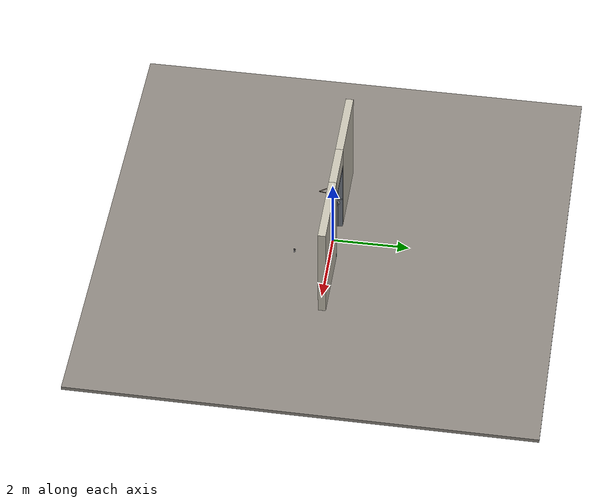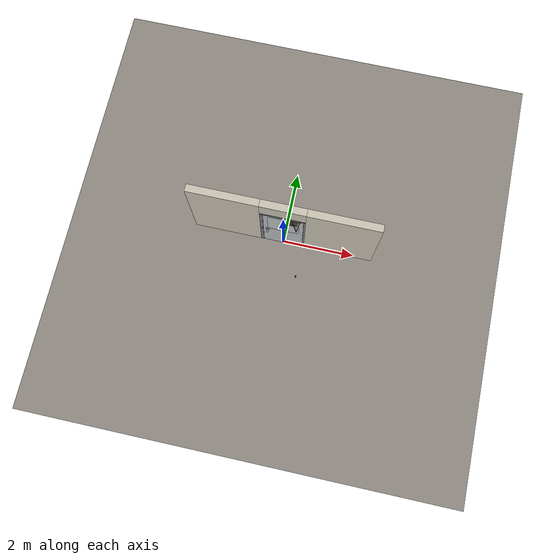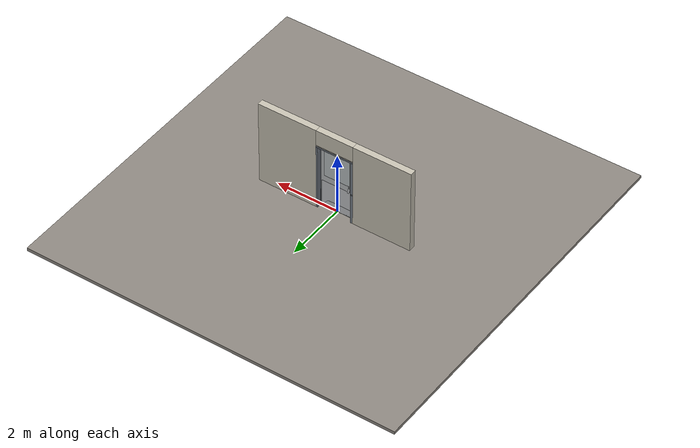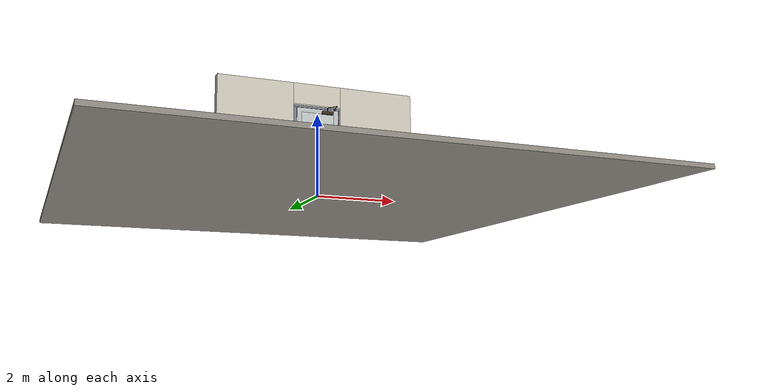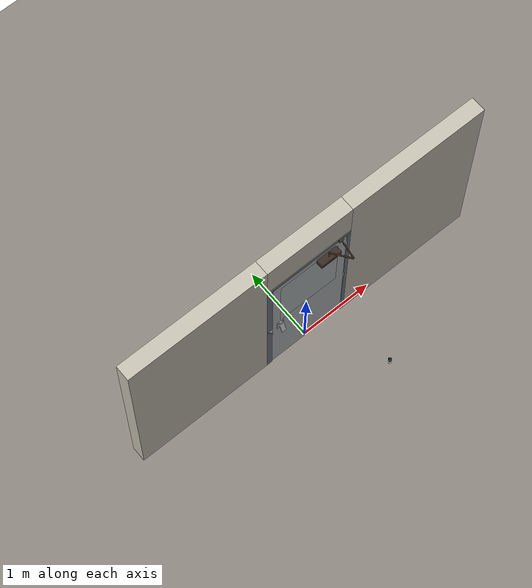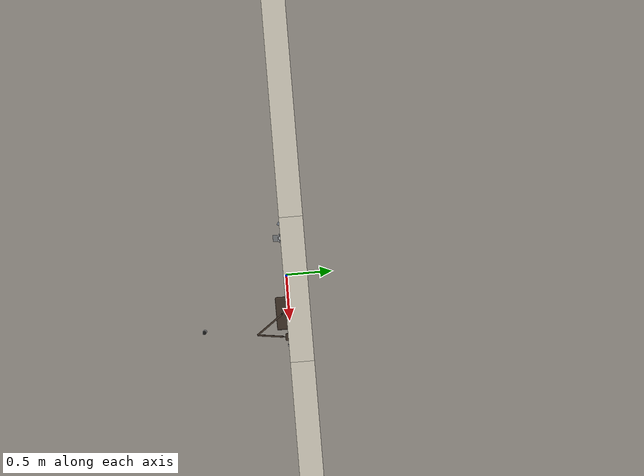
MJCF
<?xml version="1.0" ?>
<mujoco model="db0116_swing_single_full">
  <compiler angle="radian" meshdir="../../hardware" texturedir="../../textures" autolimits="true" inertiafromgeom="false"/>
  <option timestep="0.002" integrator="implicitfast" cone="elliptic" impratio="10" noslip_iterations="3">
    <flag multiccd="enable"/>
  </option>
  <size memory="16M"/>
  <default>
    <geom condim="4" solref="0.005 1" solimp="0.95 0.99 0.001"/>
    <joint solreflimit="0.005 1" solimplimit="0.95 0.99 0.001"/>
    <tendon solreflimit="0.005 1"/>
    <equality solref="0.002 1"/>
  </default>
  <visual>
    <headlight ambient="0.4 0.4 0.4" diffuse="0.7 0.7 0.7" specular="0.2 0.2 0.2"/>
    <quality shadowsize="4096"/>
    <map znear="0.01" zfar="60"/>
  </visual>
  <asset>
    <mesh name="closer_body_fdc4667657" file="closer_body_fdc4667657.obj"/>
    <mesh name="hinge_1cb808d647" file="hinge_1cb808d647.obj"/>
    <mesh name="hinge_jamb_7842e12854" file="hinge_jamb_7842e12854.obj"/>
    <material name="mat_floor" rgba="0.55 0.53 0.5 1" specular="0.2" shininess="0.15" reflectance="0"/>
    <material name="mat_wall" rgba="0.78 0.76 0.7 1" specular="0.2" shininess="0.1" reflectance="0"/>
    <material name="mat_leaf" rgba="0.72 0.73 0.74 1" specular="0.2" shininess="0.35" reflectance="0"/>
    <material name="mat_glass" rgba="0.8 0.85 0.85 0.35" specular="0.2" shininess="0.9" reflectance="0.1"/>
    <material name="mat_hinge" rgba="0.65 0.66 0.68 1" specular="0.74" shininess="0.5" reflectance="0.36"/>
    <material name="mat_op_stainless" rgba="0.75 0.76 0.77 1" specular="0.8" shininess="0.65" reflectance="0.4"/>
    <material name="mat_bolt" rgba="0.75 0.76 0.77 1" specular="0.8" shininess="0.65" reflectance="0.4"/>
    <material name="mat_frame" rgba="0.45 0.48 0.52 1" specular="0.32" shininess="0.6" reflectance="0.08"/>
    <material name="mat_seal" rgba="0.1 0.1 0.1 1" specular="0.2" shininess="0.1" reflectance="0"/>
    <material name="mat_closer" rgba="0.22 0.17 0.13 1" specular="0.8" shininess="0.6" reflectance="0.4"/>
    <material name="mat_kick" rgba="0.75 0.76 0.77 1" specular="0.8" shininess="0.65" reflectance="0.4"/>
    <material name="mat_bumper_stop" rgba="0.08 0.08 0.08 1" specular="0.2" shininess="0.1" reflectance="0"/>
    <material name="mat_stop_base" rgba="0.9 0.9 0.92 1" specular="0.8" shininess="0.9" reflectance="0.4"/>
    <texture name="skybox" type="skybox" builtin="gradient" rgb1="0.6 0.7 0.85" rgb2="0.9 0.92 0.95" width="256" height="256"/>
  </asset>
  <worldbody>
    <light name="sun" pos="1.5 -2.5 4" dir="-0.3 0.5 -0.8" directional="true" diffuse="0.8 0.8 0.8" specular="0.3 0.3 0.3" castshadow="true"/>
    <light name="fill" pos="-1.5 2.5 3" dir="0.3 -0.5 -0.7" directional="true" diffuse="0.35 0.35 0.4" castshadow="false"/>
    <camera name="robot_view" pos="0 -2.566812 1.812087" xyaxes="1 0 0 0 0.26963 0.962964" fovy="52"/>
    <camera name="far_view" pos="0 2.708813 1.812087" xyaxes="-1 0 0 0 -0.26963 0.962964" fovy="52"/>
    <camera name="iso" pos="-2.004737 -2.144762 2.234138" xyaxes="0.741536 -0.670913 0 0.242917 0.268487 0.932151" fovy="46"/>
    <camera name="detail_handle" pos="-0.241 -0.869521 1.293663" xyaxes="0.97561 0.219512 0 -0.070934 0.315262 0.94635" fovy="38"/>
    <geom name="floor" type="box" size="6 6 0.05" pos="0 0 -0.05" material="mat_floor" group="0" contype="1" conaffinity="1" friction="0.8 0.005 0.0001" density="2400"/>
    <geom name="wall_left" type="box" size="0.9415 0.1 1.3735" pos="-1.5585 0.071 1.3735" material="mat_wall" group="0" contype="1" conaffinity="1" friction="0.6 0.005 0.0001" density="800"/>
    <geom name="wall_right" type="box" size="0.9565 0.1 1.3735" pos="1.5435 0.071 1.3735" material="mat_wall" group="0" contype="1" conaffinity="1" friction="0.6 0.005 0.0001" density="800"/>
    <geom name="wall_header" type="box" size="0.602 0.1 0.26" pos="-0.015 0.071 2.487" material="mat_wall" group="0" contype="1" conaffinity="1" friction="0.6 0.005 0.0001" density="800"/>
    <geom name="hinge_0_jamb" type="mesh" mesh="hinge_jamb_7842e12854" pos="0.534 -0.029 0.259" quat="0 0 1 0" material="mat_hinge" group="1" contype="0" conaffinity="0" density="7850"/>
    <geom name="hinge_1_jamb" type="mesh" mesh="hinge_jamb_7842e12854" pos="0.534 -0.029 1.076" quat="0 0 1 0" material="mat_hinge" group="1" contype="0" conaffinity="0" density="7850"/>
    <geom name="hinge_2_jamb" type="mesh" mesh="hinge_jamb_7842e12854" pos="0.534 -0.029 1.963" quat="0 0 1 0" material="mat_hinge" group="1" contype="0" conaffinity="0" density="7850"/>
    <geom name="jamb_hinge" type="box" size="0.025 0.1 1.0735" pos="0.562 0.071 1.0735" material="mat_frame" group="0" contype="1" conaffinity="1" friction="0.6 0.005 0.0001" density="300"/>
    <geom name="strike_1016_wall_n" type="box" size="0.04 0.08075 0.018" pos="-0.577 0.09025 1.016" material="mat_frame" group="0" contype="1" conaffinity="1" friction="0.6 0.005 0.0001" density="300"/>
    <geom name="strike_1016_wall_p" type="box" size="0.04 0.008 0.018" pos="-0.577 -0.0175 1.016" material="mat_frame" group="0" contype="1" conaffinity="1" friction="0.6 0.005 0.0001" density="300"/>
    <geom name="strike_1016_ramp" type="box" size="0.04 0.018028 0.018" pos="-0.580282 -0.018312 1.016" quat="0.957092 0 0 -0.289784" material="mat_frame" group="0" contype="1" conaffinity="1" friction="0.12 0.005 0.0001" density="300"/>
    <geom name="strike_1016_back" type="box" size="0.0285 0.0095 0.018" pos="-0.5885 0 1.016" material="mat_frame" group="0" contype="1" conaffinity="1" friction="0.6 0.005 0.0001" density="300"/>
    <geom name="jamb_strike_0" type="box" size="0.04 0.1 0.499" pos="-0.577 0.071 0.499" material="mat_frame" group="0" contype="1" conaffinity="1" friction="0.6 0.005 0.0001" density="300"/>
    <geom name="jamb_strike_1" type="box" size="0.04 0.1 0.5565" pos="-0.577 0.071 1.5905" material="mat_frame" group="0" contype="1" conaffinity="1" friction="0.6 0.005 0.0001" density="300"/>
    <geom name="jamb_head" type="box" size="0.602 0.1 0.025" pos="-0.015 0.071 2.172" material="mat_frame" group="0" contype="1" conaffinity="1" friction="0.6 0.005 0.0001" density="300"/>
    <geom name="head_stud" type="box" size="0.602 0.1 0.015" pos="-0.015 0.071 2.212" material="mat_wall" group="0" contype="1" conaffinity="1" friction="0.6 0.005 0.0001" density="500"/>
    <geom name="stop_hinge" type="box" size="0.0055 0.016 1.0735" pos="0.5315 0.0385 1.0735" material="mat_frame" group="0" contype="1" conaffinity="1" friction="0.6 0.005 0.0001" density="300"/>
    <geom name="stop_strike" type="box" size="0.0055 0.016 1.0735" pos="-0.5315 0.0385 1.0735" material="mat_frame" group="0" contype="1" conaffinity="1" friction="0.6 0.005 0.0001" density="300"/>
    <geom name="stop_head" type="box" size="0.537 0.016 0.0055" pos="0 0.0385 2.1415" material="mat_frame" group="0" contype="1" conaffinity="1" friction="0.6 0.005 0.0001" density="300"/>
    <geom name="seal_hinge" type="box" size="0.004 0.002 1.0735" pos="0.534 0.024 1.0735" material="mat_seal" group="1" contype="0" conaffinity="0" density="1100"/>
    <geom name="seal_strike" type="box" size="0.004 0.002 1.0735" pos="-0.534 0.024 1.0735" material="mat_seal" group="1" contype="0" conaffinity="0" density="1100"/>
    <geom name="seal_head" type="box" size="0.517 0.002 0.008" pos="0 0.024 2.135" material="mat_seal" group="1" contype="0" conaffinity="0" density="1100"/>
    <geom name="closer_bracket" type="box" size="0.03 0.012 0.014" pos="0.437 -0.041 2.177" material="mat_closer" group="1" contype="0" conaffinity="0" density="2700"/>
    <geom name="door_stop_base" type="cylinder" size="0.022 0.003" pos="0.55 -0.93595 0.003" material="mat_stop_base" group="0" contype="1" conaffinity="1" friction="0.6 0.005 0.0001" density="7850"/>
    <geom name="door_stop_post" type="cylinder" size="0.012 0.0245" pos="0.55 -0.93595 0.0305" material="mat_stop_base" group="0" contype="1" conaffinity="1" friction="0.6 0.005 0.0001" density="7850"/>
    <geom name="door_stop_bumper" type="cylinder" size="0.022 0.02" pos="0.55 -0.93595 0.075" material="mat_bumper_stop" group="0" contype="1" conaffinity="1" friction="0.6 0.005 0.0001" density="1100"/>
    <site name="approach_point" pos="0 -1.5 0" quat="1 0 0 0" size="0.05" rgba="0.2 0.9 0.2 0.5" group="4"/>
    <site name="goal_point" pos="0 1.5 0" quat="1 0 0 0" size="0.05" rgba="0.2 0.9 0.2 0.5" group="4"/>
    <site name="door_plane_center" pos="0 0 1.0735" quat="1 0 0 0" size="0.02" rgba="0.2 0.9 0.2 0.5" group="4"/>
    <body name="leaf" pos="0.537 0 0">
      <inertial pos="-0.493081 -0.009168 1.13177" mass="73.913535" quat="0.46398 0.487511 0.525859 -0.520123" diaginertia="6.233281163 37.834023822 43.958722208"/>
      <joint name="leaf_hinge" type="hinge" axis="0 0 1" pos="-0.003 -0.029 0" limited="true" range="0 1.570796" solreflimit="0.02 1" damping="12.49954" frictionloss="3.826245" stiffness="13.190762" springref="-2.424424" armature="0.02"/>
      <geom name="leaf_slab" type="box" size="0.5335 0.022 1.067" pos="-0.5365 0 1.076" material="mat_leaf" group="0" contype="1" conaffinity="1" friction="0.35 0.005 0.0001" density="1"/>
      <geom name="leaf_glass_0" type="box" size="0.41613 0.0228 0.45881" pos="-0.5365 0 1.57749" material="mat_glass" group="1" contype="0" conaffinity="0" density="1"/>
      <geom name="hinge_0" type="mesh" mesh="hinge_1cb808d647" pos="-0.003 -0.029 0.259" quat="0 0 1 0" material="mat_hinge" group="1" contype="0" conaffinity="0" density="7850"/>
      <geom name="hinge_1" type="mesh" mesh="hinge_1cb808d647" pos="-0.003 -0.029 1.076" quat="0 0 1 0" material="mat_hinge" group="1" contype="0" conaffinity="0" density="7850"/>
      <geom name="hinge_2" type="mesh" mesh="hinge_1cb808d647" pos="-0.003 -0.029 1.963" quat="0 0 1 0" material="mat_hinge" group="1" contype="0" conaffinity="0" density="7850"/>
      <geom name="leaf_handle_paddle_backplate_n" type="box" size="0.044 0.003 0.09" pos="-0.958 -0.025 1.035895" material="mat_op_stainless" group="0" contype="1" conaffinity="1" friction="0.6 0.005 0.0001" density="3000"/>
      <geom name="leaf_handle_paddle_bearing_n_-1" type="box" size="0.005 0.006 0.009" pos="-0.996 -0.034 1.098895" material="mat_op_stainless" group="0" contype="1" conaffinity="1" friction="0.6 0.005 0.0001" density="3000"/>
      <geom name="leaf_handle_paddle_bearing_n_1" type="box" size="0.005 0.006 0.009" pos="-0.92 -0.034 1.098895" material="mat_op_stainless" group="0" contype="1" conaffinity="1" friction="0.6 0.005 0.0001" density="3000"/>
      <geom name="leaf_handle_paddle_pin_n" type="cylinder" size="0.004 0.043" pos="-0.958 -0.04 1.098895" quat="0.707107 0 0.707107 0" material="mat_op_stainless" group="1" contype="0" conaffinity="0" density="7850"/>
      <geom name="leaf_handle_paddle_backplate_p" type="box" size="0.044 0.003 0.09" pos="-0.958 0.025 1.035895" material="mat_op_stainless" group="0" contype="1" conaffinity="1" friction="0.6 0.005 0.0001" density="3000"/>
      <geom name="leaf_handle_paddle_bearing_p_-1" type="box" size="0.005 0.006 0.009" pos="-0.996 0.034 1.098895" material="mat_op_stainless" group="0" contype="1" conaffinity="1" friction="0.6 0.005 0.0001" density="3000"/>
      <geom name="leaf_handle_paddle_bearing_p_1" type="box" size="0.005 0.006 0.009" pos="-0.92 0.034 1.098895" material="mat_op_stainless" group="0" contype="1" conaffinity="1" friction="0.6 0.005 0.0001" density="3000"/>
      <geom name="leaf_handle_paddle_pin_p" type="cylinder" size="0.004 0.043" pos="-0.958 0.04 1.098895" quat="0.707107 0 0.707107 0" material="mat_op_stainless" group="1" contype="0" conaffinity="0" density="7850"/>
      <geom name="leaf_latch_bolt_faceplate" type="box" size="0.0006 0.014 0.028" pos="-1.0694 0 1.016" material="mat_bolt" group="1" contype="0" conaffinity="0" density="8500"/>
      <geom name="closer_body" type="mesh" mesh="closer_body_fdc4667657" pos="-0.3 -0.022 2.054" quat="0 0 -0.707107 0.707107" material="mat_closer" group="1" contype="0" conaffinity="0" density="2000"/>
      <geom name="closer_body_col" type="box" size="0.145 0.05 0.035" pos="-0.3 -0.072 2.054" material="mat_closer" group="3" contype="1" conaffinity="1" rgba="0.8 0.3 0.3 0.25" friction="0.6 0.005 0.0001" density="2000"/>
      <geom name="closer_pinion_shaft" type="cylinder" size="0.008 0.0615" pos="-0.3 -0.072 2.1155" material="mat_closer" group="1" contype="0" conaffinity="0" density="2700"/>
      <geom name="kick_plate_p" type="box" size="0.5035 0.0008 0.125" pos="-0.5365 0.0228 0.144" material="mat_kick" group="2" contype="0" conaffinity="0" density="7900"/>
      <geom name="armor_plate" type="box" size="0.5035 0.0008 0.45" pos="-0.5365 0.0228 0.469" material="mat_kick" group="2" contype="0" conaffinity="0" density="7900"/>
      <site name="leaf_edge_mid" pos="-1.07 0 1.067" quat="1 0 0 0" size="0.02" rgba="0.2 0.9 0.2 0.5" group="4"/>
      <body name="leaf_handle" pos="-0.958 -0.04 1.098895">
        <inertial pos="0 -0.031074 -0.073496" mass="0.333798" quat="-0.390699 0.589368 0.589368 0.390699" diaginertia="0.00010582 0.00062862 0.000726597"/>
        <joint name="leaf_handle_hinge" type="hinge" axis="-1 0 0" limited="true" range="0 0.4" damping="0.27663" frictionloss="0.056" stiffness="1.5" springref="-1" armature="0.01"/>
        <geom name="leaf_handle_paddle_col_n" type="box" size="0.032 0.006 0.063" pos="0 -0.035048 -0.082895" quat="0.980067 -0.198669 0 0" material="mat_op_stainless" group="0" contype="1" conaffinity="1" friction="0.6 0.005 0.0001" density="3000"/>
        <geom name="leaf_handle_paddle_neck_n" type="box" size="0.012 0.004 0.021" pos="0 -0.008178 -0.019342" quat="0.980067 -0.198669 0 0" material="mat_op_stainless" group="0" contype="1" conaffinity="1" friction="0.6 0.005 0.0001" density="3000"/>
        <geom name="leaf_handle_paddle_hub_n" type="cylinder" size="0.008 0.016" pos="0 0 0" quat="0.707107 0 0.707107 0" material="mat_op_stainless" group="1" contype="0" conaffinity="0" density="3000"/>
        <site name="leaf_handle_grip_n" pos="0 -0.029521 -0.085232" quat="0.552531 -0.833492 0 0" size="0.012" rgba="0.2 0.9 0.2 0.5" group="4"/>
      </body>
      <body name="leaf_handle_paddle_follower_p" pos="-0.958 0.04 1.098895">
        <inertial pos="0 0.031074 -0.073496" mass="0.333798" quat="0.589368 -0.390699 -0.390699 -0.589368" diaginertia="0.00010582 0.00062862 0.000726597"/>
        <joint name="leaf_handle_paddle_follower_p_hinge" type="hinge" axis="-1 0 0" limited="true" range="0 0.4" armature="0.002"/>
        <geom name="leaf_handle_paddle_col_p" type="box" size="0.032 0.006 0.063" pos="0 0.035048 -0.082895" quat="0.980067 0.198669 0 0" material="mat_op_stainless" group="0" contype="1" conaffinity="1" friction="0.6 0.005 0.0001" density="3000"/>
        <geom name="leaf_handle_paddle_neck_p" type="box" size="0.012 0.004 0.021" pos="0 0.008178 -0.019342" quat="0.980067 0.198669 0 0" material="mat_op_stainless" group="0" contype="1" conaffinity="1" friction="0.6 0.005 0.0001" density="3000"/>
        <geom name="leaf_handle_paddle_hub_p" type="cylinder" size="0.008 0.016" pos="0 0 0" quat="0.707107 0 0.707107 0" material="mat_op_stainless" group="1" contype="0" conaffinity="0" density="3000"/>
        <site name="leaf_handle_grip_p" pos="0 0.040574 -0.080559" quat="0.833492 -0.552531 0 0" size="0.012" rgba="0.2 0.9 0.2 0.5" group="4"/>
      </body>
      <body name="leaf_latch_bolt" pos="-1.07 0 1.016">
        <inertial pos="0.0055 0 0" mass="0.074627" quat="0.92388 0.382683 0 0" diaginertia="0.000002271 0.000013255 0.000013255"/>
        <joint name="leaf_latch_bolt_slide" type="slide" axis="1 0 0" limited="true" range="0 0.019" damping="2" frictionloss="0.3" stiffness="550" springref="-0.01" armature="0.1"/>
        <geom name="leaf_latch_bolt_capsule" type="capsule" size="0.008 0.0165" pos="0.0055 0 0" quat="0.707107 0 -0.707107 0" material="mat_bolt" group="0" contype="1" conaffinity="1" friction="0.2 0.005 0.0001" density="8500"/>
      </body>
      <body name="closer_arm_main" pos="-0.3 -0.072 2.177" quat="0.890947 0 0 -0.454107">
        <inertial pos="0.14 0 0" mass="0.12096" quat="1 0 0 0" diaginertia="0.000003588 0.00079128 0.000792852"/>
        <joint name="closer_pinion" type="hinge" axis="0 0 1" limited="false" damping="0.01" armature="0.002"/>
        <geom name="closer_arm_main_geom" type="box" size="0.14 0.008 0.005" pos="0.14 0 0" material="mat_closer" group="1" contype="0" conaffinity="0" density="2700"/>
        <body name="closer_arm_fore" pos="0.28 0 0" quat="0.373215 0 0 0.927745">
          <inertial pos="0.128088 0 0" mass="0.076531" quat="1 0 0 0" diaginertia="0.000001771 0.000437665 0.000438201"/>
          <joint name="closer_elbow" type="hinge" axis="0 0 1" limited="false" damping="0.01" armature="0.002"/>
          <geom name="closer_arm_fore_geom" type="box" size="0.1125 0.007 0.004" pos="0.1125 0 0" material="mat_closer" group="1" contype="0" conaffinity="0" density="2700"/>
          <geom name="closer_fore_neck" type="box" size="0.0175 0.003 0.003" pos="0.2425 0 0" material="mat_closer" group="1" contype="0" conaffinity="0" density="2700"/>
          <geom name="closer_fore_pivot" type="cylinder" size="0.005 0.012" pos="0.26 0 0" material="mat_closer" group="1" contype="0" conaffinity="0" density="2700"/>
        </body>
      </body>
    </body>
  </worldbody>
  <tendon>
    <fixed name="leaf_latch_bolt_coupling" limited="true" range="0 10">
      <joint joint="leaf_latch_bolt_slide" coef="1"/>
      <joint joint="leaf_handle_hinge" coef="-0.051351"/>
    </fixed>
  </tendon>
  <equality>
    <joint name="leaf_handle_paddle_cam_p" joint1="leaf_handle_paddle_follower_p_hinge" joint2="leaf_handle_hinge" polycoef="0 1 0 0 0" active="true"/>
    <connect name="closer_arm_connect" body1="closer_arm_fore" body2="world" anchor="0.26 0 0" active="true"/>
  </equality>
  <contact>
    <exclude body1="closer_arm_main" body2="leaf"/>
    <exclude body1="closer_arm_fore" body2="leaf"/>
    <exclude body1="closer_arm_main" body2="closer_arm_fore"/>
  </contact>
  <sensor>
    <jointpos name="leaf_hinge_pos" joint="leaf_hinge"/>
    <jointvel name="leaf_hinge_vel" joint="leaf_hinge"/>
    <jointpos name="leaf_handle_hinge_pos" joint="leaf_handle_hinge"/>
    <jointvel name="leaf_handle_hinge_vel" joint="leaf_handle_hinge"/>
    <jointpos name="leaf_latch_bolt_slide_pos" joint="leaf_latch_bolt_slide"/>
    <jointvel name="leaf_latch_bolt_slide_vel" joint="leaf_latch_bolt_slide"/>
  </sensor>
</mujoco>
